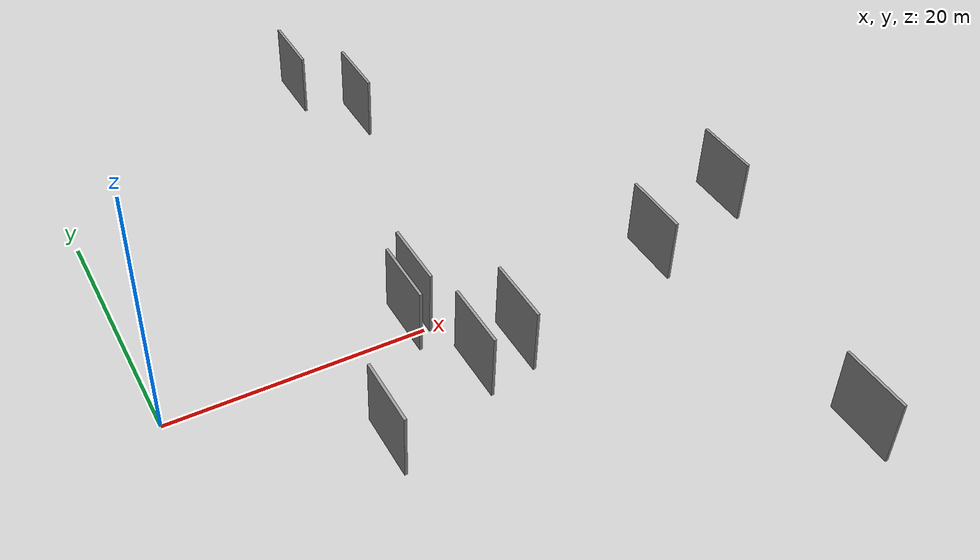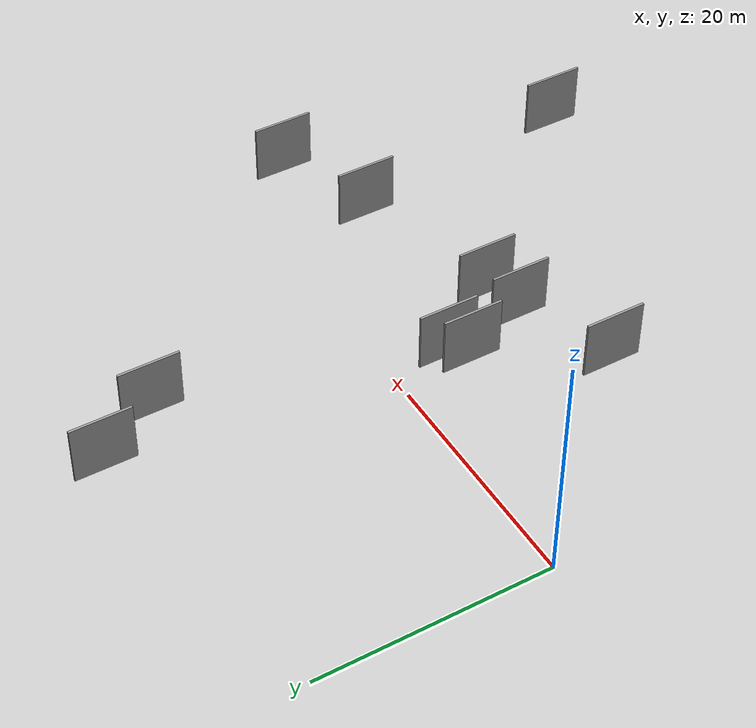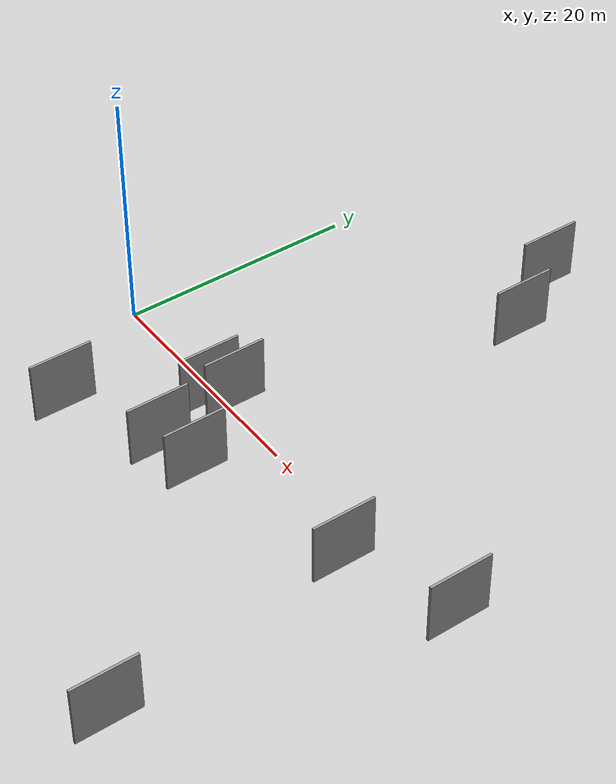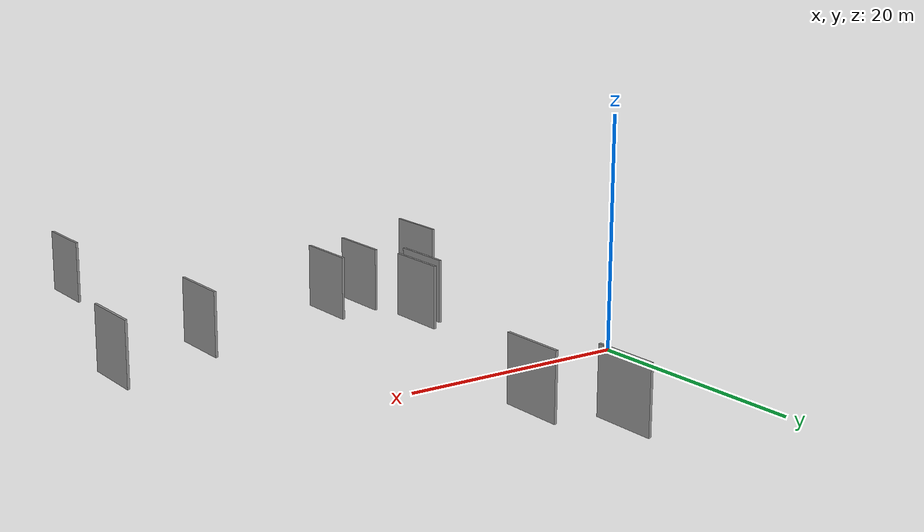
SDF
<sdf version="1.6">
 <world name="default">
  <scene>
   <sky><clouds><speed>12</speed></clouds></sky>
   <ambient>0.4 0.4 0.4 1</ambient>
   <background>0.7 0.7 0.7 1</background>
   <shadows>1</shadows>
  </scene>
  <gravity>0 0 -9.8066</gravity>
  <magnetic_field>6e-06 2.3e-05 -4.2e-05</magnetic_field>
  <physics default="0" name="default_physics" type="ode">
   <ode>
    <solver>
     <type>quick</type>
     <iters>10</iters>
     <sor>1.0</sor>
     <use_dynamic_moi_rescaling>0</use_dynamic_moi_rescaling>
    </solver>
    <constraints>
     <cfm>0</cfm>
     <erp>0.2</erp>
     <contact_max_correcting_vel>100</contact_max_correcting_vel>
     <contact_surface_layer>0.001</contact_surface_layer>
    </constraints>
   </ode>
   <max_step_size>0.004</max_step_size>
   <real_time_factor>1</real_time_factor>
   <real_time_update_rate>250</real_time_update_rate>
  </physics>
  <light name="sun" type="directional">
   <pose>0 0 10 0 0 0</pose>
   <diffuse>0.8 0.8 0.8 1</diffuse>
   <specular>0.2 0.2 0.2 1</specular>
   <attenuation>
    <range>1000</range>
    <constant>0.9</constant>
    <linear>0.01</linear>
    <quadratic>0.001</quadratic>
   </attenuation>
   <direction>-0.5 0.1 -0.9</direction>
  </light>
  <model name="grey_wall_1">
   <static>1</static>
   <pose>22.4662 -8.4221 5.0 0.000000 0.000000 1.570796</pose>
   <link name="link">
    <pose>0 0 2.50 0 0 0</pose>
    <collision name="collision"><geometry><box><size>5.00 0.2 5.00</size></box></geometry></collision>
    <visual name="visual">
     <cast_shadows>0</cast_shadows>
     <geometry><box><size>5.00 0.2 5.00</size></box></geometry>
     <material>
      <script>
       <uri>model://grey_wall/materials/scripts</uri>
       <uri>model://grey_wall/materials/textures</uri>
       <name>vrc/grey_wall</name>
      </script>
     </material>
    </visual>
   </link>
  </model>
  <model name="grey_wall_2">
   <static>1</static>
   <pose>37.6301 -24.7926 5.0 0.000000 0.000000 1.570796</pose>
   <link name="link">
    <pose>0 0 2.50 0 0 0</pose>
    <collision name="collision"><geometry><box><size>5.00 0.2 5.00</size></box></geometry></collision>
    <visual name="visual">
     <cast_shadows>0</cast_shadows>
     <geometry><box><size>5.00 0.2 5.00</size></box></geometry>
     <material>
      <script>
       <uri>model://grey_wall/materials/scripts</uri>
       <uri>model://grey_wall/materials/textures</uri>
       <name>vrc/grey_wall</name>
      </script>
     </material>
    </visual>
   </link>
  </model>
  <model name="grey_wall_3">
   <static>1</static>
   <pose>11.0959 -12.3454 5.0 0.000000 0.000000 1.570796</pose>
   <link name="link">
    <pose>0 0 2.50 0 0 0</pose>
    <collision name="collision"><geometry><box><size>5.00 0.2 5.00</size></box></geometry></collision>
    <visual name="visual">
     <cast_shadows>0</cast_shadows>
     <geometry><box><size>5.00 0.2 5.00</size></box></geometry>
     <material>
      <script>
       <uri>model://grey_wall/materials/scripts</uri>
       <uri>model://grey_wall/materials/textures</uri>
       <name>vrc/grey_wall</name>
      </script>
     </material>
    </visual>
   </link>
  </model>
  <model name="grey_wall_4">
   <static>1</static>
   <pose>35.3812 -5.2254 5.0 0.000000 0.000000 1.570796</pose>
   <link name="link">
    <pose>0 0 2.50 0 0 0</pose>
    <collision name="collision"><geometry><box><size>5.00 0.2 5.00</size></box></geometry></collision>
    <visual name="visual">
     <cast_shadows>0</cast_shadows>
     <geometry><box><size>5.00 0.2 5.00</size></box></geometry>
     <material>
      <script>
       <uri>model://grey_wall/materials/scripts</uri>
       <uri>model://grey_wall/materials/textures</uri>
       <name>vrc/grey_wall</name>
      </script>
     </material>
    </visual>
   </link>
  </model>
  <model name="grey_wall_5">
   <static>1</static>
   <pose>16.6907 -3.4397 5.0 0.000000 0.000000 1.570796</pose>
   <link name="link">
    <pose>0 0 2.50 0 0 0</pose>
    <collision name="collision"><geometry><box><size>5.00 0.2 5.00</size></box></geometry></collision>
    <visual name="visual">
     <cast_shadows>0</cast_shadows>
     <geometry><box><size>5.00 0.2 5.00</size></box></geometry>
     <material>
      <script>
       <uri>model://grey_wall/materials/scripts</uri>
       <uri>model://grey_wall/materials/textures</uri>
       <name>vrc/grey_wall</name>
      </script>
     </material>
    </visual>
   </link>
  </model>
  <model name="grey_wall_6">
   <static>1</static>
   <pose>18.0654 -2.1949 5.0 0.000000 0.000000 1.570796</pose>
   <link name="link">
    <pose>0 0 2.50 0 0 0</pose>
    <collision name="collision"><geometry><box><size>5.00 0.2 5.00</size></box></geometry></collision>
    <visual name="visual">
     <cast_shadows>0</cast_shadows>
     <geometry><box><size>5.00 0.2 5.00</size></box></geometry>
     <material>
      <script>
       <uri>model://grey_wall/materials/scripts</uri>
       <uri>model://grey_wall/materials/textures</uri>
       <name>vrc/grey_wall</name>
      </script>
     </material>
    </visual>
   </link>
  </model>
  <model name="grey_wall_7">
   <static>1</static>
   <pose>20.7248 25.0388 5.0 0.000000 0.000000 1.570796</pose>
   <link name="link">
    <pose>0 0 2.50 0 0 0</pose>
    <collision name="collision"><geometry><box><size>5.00 0.2 5.00</size></box></geometry></collision>
    <visual name="visual">
     <cast_shadows>0</cast_shadows>
     <geometry><box><size>5.00 0.2 5.00</size></box></geometry>
     <material>
      <script>
       <uri>model://grey_wall/materials/scripts</uri>
       <uri>model://grey_wall/materials/textures</uri>
       <name>vrc/grey_wall</name>
      </script>
     </material>
    </visual>
   </link>
  </model>
  <model name="grey_wall_8">
   <static>1</static>
   <pose>43.7593 -2.2156 5.0 0.000000 0.000000 1.570796</pose>
   <link name="link">
    <pose>0 0 2.50 0 0 0</pose>
    <collision name="collision"><geometry><box><size>5.00 0.2 5.00</size></box></geometry></collision>
    <visual name="visual">
     <cast_shadows>0</cast_shadows>
     <geometry><box><size>5.00 0.2 5.00</size></box></geometry>
     <material>
      <script>
       <uri>model://grey_wall/materials/scripts</uri>
       <uri>model://grey_wall/materials/textures</uri>
       <name>vrc/grey_wall</name>
      </script>
     </material>
    </visual>
   </link>
  </model>
  <model name="grey_wall_9">
   <static>1</static>
   <pose>18.9179 -9.1432 5.0 0.000000 0.000000 1.570796</pose>
   <link name="link">
    <pose>0 0 2.50 0 0 0</pose>
    <collision name="collision"><geometry><box><size>5.00 0.2 5.00</size></box></geometry></collision>
    <visual name="visual">
     <cast_shadows>0</cast_shadows>
     <geometry><box><size>5.00 0.2 5.00</size></box></geometry>
     <material>
      <script>
       <uri>model://grey_wall/materials/scripts</uri>
       <uri>model://grey_wall/materials/textures</uri>
       <name>vrc/grey_wall</name>
      </script>
     </material>
    </visual>
   </link>
  </model>
  <model name="grey_wall_10">
   <static>1</static>
   <pose>24.0028 19.6857 5.0 0.000000 0.000000 1.570796</pose>
   <link name="link">
    <pose>0 0 2.50 0 0 0</pose>
    <collision name="collision"><geometry><box><size>5.00 0.2 5.00</size></box></geometry></collision>
    <visual name="visual">
     <cast_shadows>0</cast_shadows>
     <geometry><box><size>5.00 0.2 5.00</size></box></geometry>
     <material>
      <script>
       <uri>model://grey_wall/materials/scripts</uri>
       <uri>model://grey_wall/materials/textures</uri>
       <name>vrc/grey_wall</name>
      </script>
     </material>
    </visual>
   </link>
  </model>
 </world>
</sdf>
